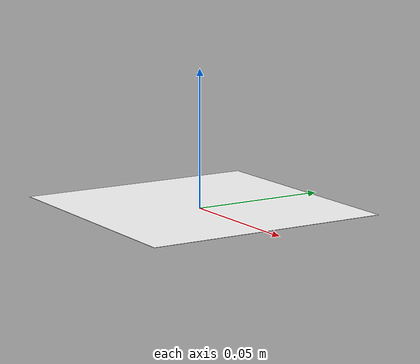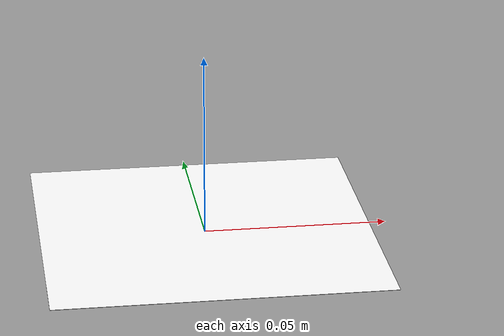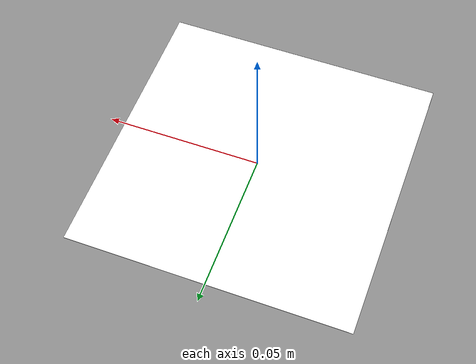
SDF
<?xml version="1.0" ?>
<sdf version="1.7">
  <model name="ArUcoMarker_inner">
    <static>true</static>
    <link name="link">
      <pose>0 0 0 0 0 0</pose>
      <visual name="marker_visual">
        <pose>0 0 0.001 0 0 0</pose> <!-- 微抬高避免 Z-fighting -->
        <geometry>
          <plane>
            <normal>0 0 1</normal>
            <size>0.09 0.09</size> <!-- 根據需求改大小 -->
          </plane>
        </geometry>
        <material>
          <pbr>
            <metal>
              <albedo_map>model://ArUcoMarkers/textures/inner_marker.png</albedo_map>
              <metalness>0.0</metalness>
              <roughness>1.0</roughness>
            </metal>
          </pbr>
          <ambient>1 1 1 1</ambient>
          <diffuse>1 1 1 1</diffuse>
        </material>
      </visual>
    </link>
  </model>
</sdf>
